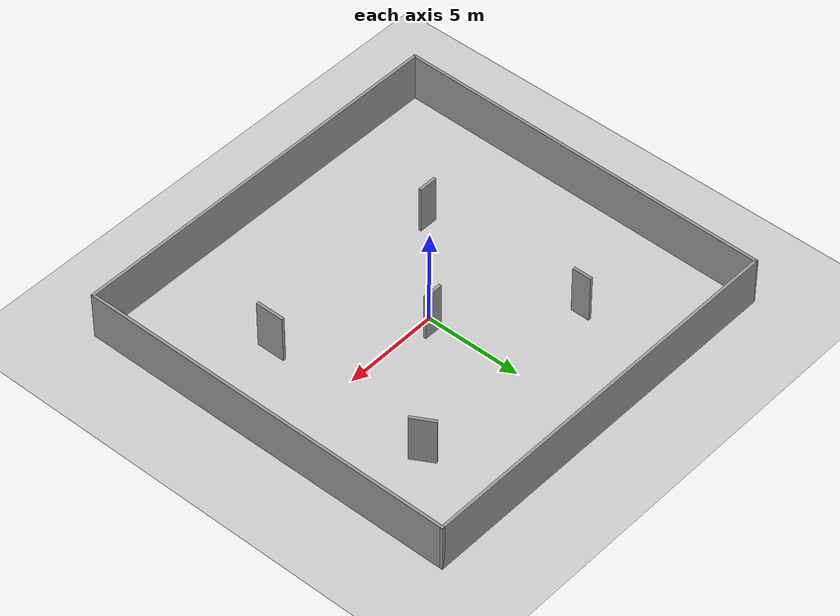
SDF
<sdf version="1.7">
 <world name="default">
  <light name="sun" type="directional">
   <pose>0 0 10 0 -0 0</pose>
   <diffuse>0.8 0.8 0.8 1</diffuse>
   <specular>0.2 0.2 0.2 1</specular>
   <attenuation>
    <range>1000</range>
    <constant>0.9</constant>
    <linear>0.01</linear>
    <quadratic>0.001</quadratic>
   </attenuation>
   <direction>-0.5 0.1 -0.9</direction>
   <spot><inner_angle>0</inner_angle><outer_angle>0</outer_angle><falloff>0</falloff></spot>
  </light>
  <model name="ground_plane">
   <static>1</static>
   <link name="link">
    <collision name="collision">
     <geometry><plane><normal>0 0 1</normal><size>100 100</size></plane></geometry>
     <surface>
      <contact><collide_bitmask>65535</collide_bitmask></contact>
      <friction><ode><mu>100</mu><mu2>50</mu2></ode></friction>
     </surface>
    </collision>
    <visual name="visual">
     <cast_shadows>0</cast_shadows>
     <geometry><plane><normal>0 0 1</normal><size>100 100</size></plane></geometry>
     <material>
      <script><uri>file://media/materials/scripts/gazebo.material</uri><name>Gazebo/Grey</name></script>
     </material>
    </visual>
   </link>
  </model>
  <gravity>0 0 -9.8</gravity>
  <magnetic_field>6e-06 2.3e-05 -4.2e-05</magnetic_field>
  <atmosphere type="adiabatic"/>
  <physics type="ode">
   <max_step_size>0.001</max_step_size>
   <real_time_factor>1</real_time_factor>
   <real_time_update_rate>1000</real_time_update_rate>
  </physics>
  <scene><ambient>0.4 0.4 0.4 1</ambient><background>0.7 0.7 0.7 1</background><shadows>1</shadows></scene>
  <spherical_coordinates>
   <surface_model>EARTH_WGS84</surface_model>
   <latitude_deg>0</latitude_deg>
   <longitude_deg>0</longitude_deg>
   <elevation>0</elevation>
   <heading_deg>0</heading_deg>
  </spherical_coordinates>
  <model name="map4">
   <pose>-0.012636 -0.111246 0 0 -0 0</pose>
   <link name="Wall_1">
    <collision name="Wall_1_Collision">
     <geometry><box><size>20.0011 0.15 2.5</size></box></geometry>
     <pose>0 0 1.25 0 -0 0</pose>
    </collision>
    <visual name="Wall_1_Visual">
     <pose>0 0 1.25 0 -0 0</pose>
     <geometry><box><size>20.0011 0.15 2.5</size></box></geometry>
     <material>
      <script><uri>file://media/materials/scripts/gazebo.material</uri><name>Gazebo/Grey</name></script>
      <ambient>1 1 1 1</ambient>
     </material>
     <meta><layer>0</layer></meta>
    </visual>
    <pose>-10.1937 0 0 0 -0 -1.58146</pose>
   </link>
   <link name="Wall_10">
    <collision name="Wall_10_Collision">
     <geometry><box><size>1 0.15 2.5</size></box></geometry>
     <pose>0 0 1.25 0 -0 0</pose>
    </collision>
    <visual name="Wall_10_Visual">
     <pose>0 0 1.25 0 -0 0</pose>
     <geometry><box><size>1 0.15 2.5</size></box></geometry>
     <material>
      <script><uri>file://media/materials/scripts/gazebo.material</uri><name>Gazebo/Grey</name></script>
      <ambient>1 1 1 1</ambient>
     </material>
     <meta><layer>0</layer></meta>
    </visual>
    <pose>-4.5534 4.83684 0 0 -0 -1.5708</pose>
   </link>
   <link name="Wall_12">
    <collision name="Wall_12_Collision">
     <geometry><box><size>1 0.15 2.5</size></box></geometry>
     <pose>0 0 1.25 0 -0 0</pose>
    </collision>
    <visual name="Wall_12_Visual">
     <pose>0 0 1.25 0 -0 0</pose>
     <geometry><box><size>1 0.15 2.5</size></box></geometry>
     <material>
      <script><uri>file://media/materials/scripts/gazebo.material</uri><name>Gazebo/Grey</name></script>
      <ambient>1 1 1 1</ambient>
     </material>
     <meta><layer>0</layer></meta>
    </visual>
    <pose>-4.32332 -3.84913 0 0 -0 0</pose>
   </link>
   <link name="Wall_14">
    <collision name="Wall_14_Collision">
     <geometry><box><size>1 0.15 2.5</size></box></geometry>
     <pose>0 0 1.25 0 -0 0</pose>
    </collision>
    <visual name="Wall_14_Visual">
     <pose>0 0 1.25 0 -0 0</pose>
     <geometry><box><size>1 0.15 2.5</size></box></geometry>
     <material>
      <script><uri>file://media/materials/scripts/gazebo.material</uri><name>Gazebo/Grey</name></script>
      <ambient>1 1 1 1</ambient>
     </material>
     <meta><layer>0</layer></meta>
    </visual>
    <pose>0.52913 0.744779 0 0 -0 0</pose>
   </link>
   <link name="Wall_17">
    <collision name="Wall_17_Collision">
     <geometry><box><size>1.5 0.15 2.5</size></box></geometry>
     <pose>0 0 1.25 0 -0 0</pose>
    </collision>
    <visual name="Wall_17_Visual">
     <pose>0 0 1.25 0 -0 0</pose>
     <geometry><box><size>1.5 0.15 2.5</size></box></geometry>
     <material>
      <script><uri>file://media/materials/scripts/gazebo.material</uri><name>Gazebo/Grey</name></script>
      <ambient>1 1 1 1</ambient>
     </material>
     <meta><layer>0</layer></meta>
    </visual>
    <pose>5.9907 -3.63154 0 0 -0 1.5708</pose>
   </link>
   <link name="Wall_19">
    <collision name="Wall_19_Collision">
     <geometry><box><size>1.25 0.15 2.5</size></box></geometry>
     <pose>0 0 1.25 0 -0 0</pose>
    </collision>
    <visual name="Wall_19_Visual">
     <pose>0 0 1.25 0 -0 0</pose>
     <geometry><box><size>1.25 0.15 2.5</size></box></geometry>
     <material>
      <script><uri>file://media/materials/scripts/gazebo.material</uri><name>Gazebo/Grey</name></script>
      <ambient>1 1 1 1</ambient>
     </material>
     <meta><layer>0</layer></meta>
    </visual>
    <pose>6.38503 5.39933 0 0 -0 -1.0472</pose>
   </link>
   <link name="Wall_5">
    <collision name="Wall_5_Collision">
     <geometry><box><size>20.75 0.15 2.5</size></box></geometry>
     <pose>0 0 1.25 0 -0 0</pose>
    </collision>
    <visual name="Wall_5_Visual">
     <pose>0 0 1.25 0 -0 0</pose>
     <geometry><box><size>20.75 0.15 2.5</size></box></geometry>
     <material>
      <script><uri>file://media/materials/scripts/gazebo.material</uri><name>Gazebo/Grey</name></script>
      <ambient>1 1 1 1</ambient>
     </material>
     <meta><layer>0</layer></meta>
    </visual>
    <pose>0.000397 -9.925 0 0 -0 0</pose>
   </link>
   <link name="Wall_6">
    <collision name="Wall_6_Collision">
     <geometry><box><size>20 0.15 2.5</size></box></geometry>
     <pose>0 0 1.25 0 -0 0</pose>
    </collision>
    <visual name="Wall_6_Visual">
     <pose>0 0 1.25 0 -0 0</pose>
     <geometry><box><size>20 0.15 2.5</size></box></geometry>
     <material>
      <script><uri>file://media/materials/scripts/gazebo.material</uri><name>Gazebo/Grey</name></script>
      <ambient>1 1 1 1</ambient>
     </material>
     <meta><layer>0</layer></meta>
    </visual>
    <pose>10.3004 0 0 0 -0 1.5708</pose>
   </link>
   <link name="Wall_8">
    <collision name="Wall_8_Collision">
     <geometry><box><size>20.5383 0.15 2.5</size></box></geometry>
     <pose>0 0 1.25 0 -0 0</pose>
    </collision>
    <visual name="Wall_8_Visual">
     <pose>0 0 1.25 0 -0 0</pose>
     <geometry><box><size>20.5383 0.15 2.5</size></box></geometry>
     <material>
      <script><uri>file://media/materials/scripts/gazebo.material</uri><name>Gazebo/Grey</name></script>
      <ambient>1 1 1 1</ambient>
     </material>
     <meta><layer>0</layer></meta>
    </visual>
    <pose>0.106257 9.925 0 0 -0 0</pose>
   </link>
   <static>1</static>
  </model>
 </world>
</sdf>
